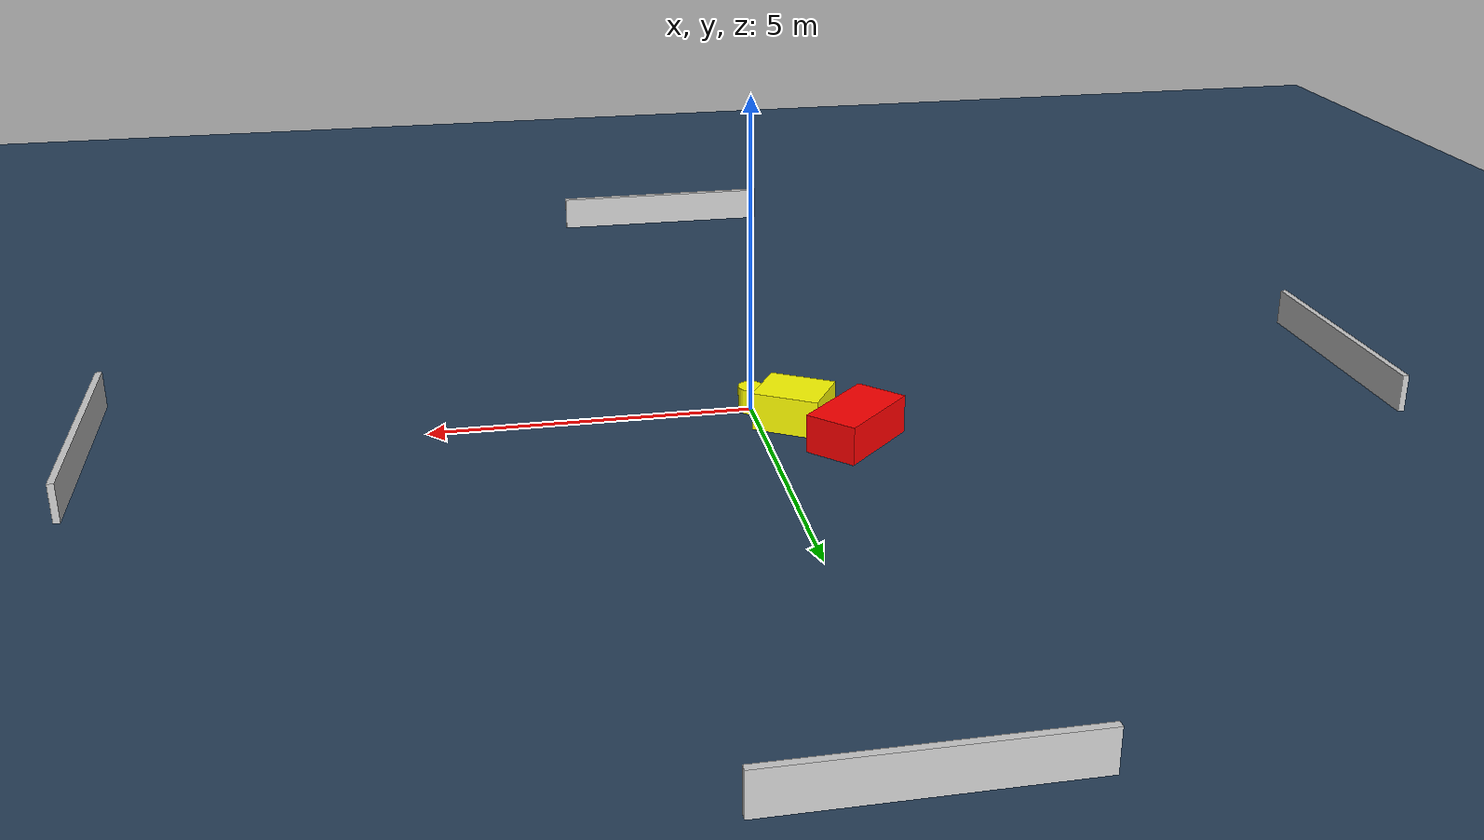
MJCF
<?xml version="1.0" ?>
<mujoco model="generated_environment">
  <option timestep="0.01" integrator="RK4" cone="elliptic"/>
  <default>
    <geom density="1"/>
  </default>
  <asset>
    <texture builtin="gradient" height="3072" name="skybox" rgb1="0.3 0.5 0.7" rgb2="0 0 0" type="skybox" width="512"/>
    <texture builtin="checker" height="300" name="groundplane" rgb1="0.2 0.3 0.4" rgb2="0.1 0.2 0.3" type="2d" width="300"/>
    <material name="groundplane" reflectance="0.2" texrepeat="5 5" texture="groundplane"/>
  </asset>
  <worldbody>
    <light dir="0 0 -1" directional="true" pos="0 0 1.5"/>
    <geom condim="3" friction="0.5 0.005 0.001" material="groundplane" name="floor" pos="0 0 0" size="0 0 0.05" type="plane"/>
    <body name="walls">
      <geom name="wall_1" condim="4" pos="-10.0 0.0 0.3" rgba="0.800000011920929 0.800000011920929 0.800000011920929 1.0" size="0.05 2.0 0.3" type="box"/>
      <geom name="wall_2" condim="4" pos="10.0 0.0 0.3" rgba="0.800000011920929 0.800000011920929 0.800000011920929 1.0" size="0.05 2.0 0.3" type="box"/>
      <geom name="wall_3" condim="4" pos="0.0 -10.0 0.3" rgba="0.800000011920929 0.800000011920929 0.800000011920929 1.0" size="2.0 0.05 0.3" type="box"/>
      <geom name="wall_4" condim="4" pos="0.0 10.0 0.3" rgba="0.800000011920929 0.800000011920929 0.800000011920929 1.0" size="2.0 0.05 0.3" type="box"/>
    </body>
    <body name="robot">
      <joint name="joint_x" type="slide" pos="0 0 0" axis="1 0 0"/>
      <joint name="joint_y" type="slide" pos="0 0 0" axis="0 1 0"/>
      <geom name="robot" type="cylinder" pos="0.0 0.0 0.2" size="0.2 0.2 0.0" mass="5.0" friction="1.0 0.005 0.0001" condim="4" rgba="1.0 1.0 0.0 1.0"/>
    </body>
    <body name="obstacle_1_movable">
      <geom name="obstacle_1_movable" condim="4" pos="-0.551487592310295 0.6487629023939036 0.3" euler="0 0 58.80652084665836" friction="0.0 0.005 0.001" rgba="1.0 1.0 0.0 1.0" size="0.44157903258037473 0.5225932751607683 0.3" type="box" mass="0.1"/>
      <joint type="free"/>
    </body>
    <body name="obstacle_2_static">
      <geom name="obstacle_2_static" condim="4" pos="-1.3234185499877213 1.4855218391923002 0.3" euler="0 0 44.19273382763752" friction="0.0 0.005 0.001" rgba="1.0 0.0 0.0 1.0" size="0.7274497465680232 0.41264075360429797 0.3" type="box"/>
    </body>
  </worldbody>
  <actuator>
    <motor name="actuator_x" joint="joint_x" gear="1" ctrlrange="-1 1"/>
    <motor name="actuator_y" joint="joint_y" gear="1" ctrlrange="-1 1"/>
  </actuator>
</mujoco>
